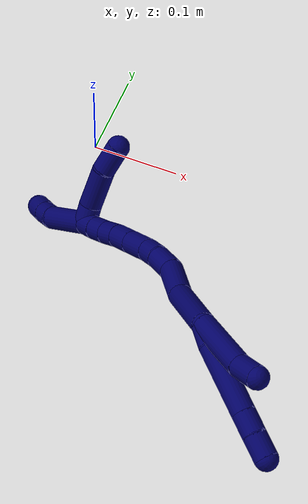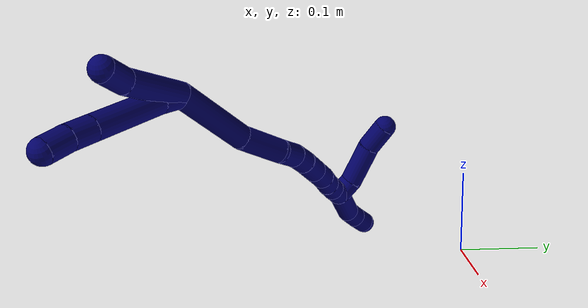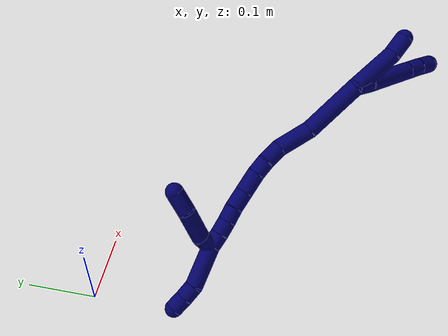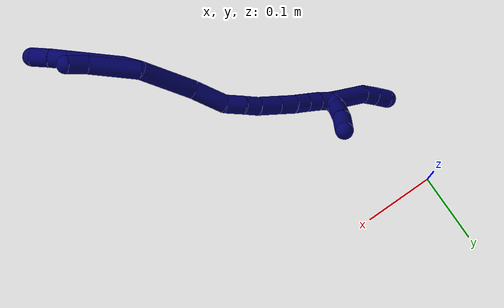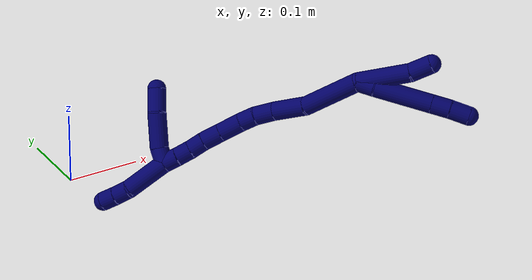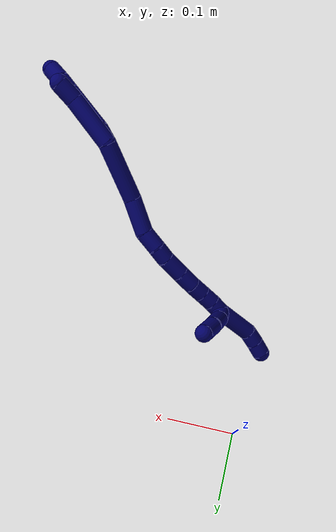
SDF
<sdf version="1.7">
 <world name="default">
  <model name="7">
   <static>0</static>
   <link name="7">
    <collision name="collision-cylinder-e_1_2_8">
     <pose>0.006313 0.009011 0.004244 -1.13065 0.564919 -0.364149</pose>
     <geometry><cylinder><radius>0.0125</radius><length>0.023584</length></cylinder></geometry>
     <surface>
      <friction><ode><mu>1.16</mu><mu2>1.16</mu2><slip1>0</slip1><slip2>0</slip2></ode></friction>
      <contact><ode><kp>1e+06</kp><kd>1</kd><max_vel>0</max_vel><min_depth>0.001</min_depth></ode></contact>
     </surface>
    </collision>
    <visual name="visual-cylinder-e_1_2_8">
     <pose>0.006313 0.009011 0.004244 -1.13065 0.564919 -0.364149</pose>
     <geometry><cylinder><radius>0.0125</radius><length>0.023584</length></cylinder></geometry>
     <material><ambient>0.003922 0 0.403922 1</ambient></material>
    </visual>
    <collision name="collision-cylinder-e_2_8_9">
     <pose>0.028308 0.049894 0.021971 -1.17059 0.425478 -0.284392</pose>
     <geometry><cylinder><radius>0.0125</radius><length>0.075991</length></cylinder></geometry>
     <surface>
      <friction><ode><mu>1.16</mu><mu2>1.16</mu2><slip1>0</slip1><slip2>0</slip2></ode></friction>
      <contact><ode><kp>1e+06</kp><kd>1</kd><max_vel>0</max_vel><min_depth>0.001</min_depth></ode></contact>
     </surface>
    </collision>
    <visual name="visual-cylinder-e_2_8_9">
     <pose>0.028308 0.049894 0.021971 -1.17059 0.425478 -0.284392</pose>
     <geometry><cylinder><radius>0.0125</radius><length>0.075991</length></cylinder></geometry>
     <material><ambient>0.003922 0 0.403922 1</ambient></material>
    </visual>
    <collision name="collision-cylinder-e_3_9_10">
     <pose>0.049031 0.092044 0.039791 -1.17148 0.424347 -0.283892</pose>
     <geometry><cylinder><radius>0.0125</radius><length>0.02448</length></cylinder></geometry>
     <surface>
      <friction><ode><mu>1.16</mu><mu2>1.16</mu2><slip1>0</slip1><slip2>0</slip2></ode></friction>
      <contact><ode><kp>1e+06</kp><kd>1</kd><max_vel>0</max_vel><min_depth>0.001</min_depth></ode></contact>
     </surface>
    </collision>
    <visual name="visual-cylinder-e_3_9_10">
     <pose>0.049031 0.092044 0.039791 -1.17148 0.424347 -0.283892</pose>
     <geometry><cylinder><radius>0.0125</radius><length>0.02448</length></cylinder></geometry>
     <material><ambient>0.003922 0 0.403922 1</ambient></material>
    </visual>
    <collision name="collision-cylinder-e_4_10_6">
     <pose>0.058949 0.113765 0.047805 -1.25983 0.385587 -0.282723</pose>
     <geometry><cylinder><radius>0.0125</radius><length>0.025945</length></cylinder></geometry>
     <surface>
      <friction><ode><mu>1.16</mu><mu2>1.16</mu2><slip1>0</slip1><slip2>0</slip2></ode></friction>
      <contact><ode><kp>1e+06</kp><kd>1</kd><max_vel>0</max_vel><min_depth>0.001</min_depth></ode></contact>
     </surface>
    </collision>
    <visual name="visual-cylinder-e_4_10_6">
     <pose>0.058949 0.113765 0.047805 -1.25983 0.385587 -0.282723</pose>
     <geometry><cylinder><radius>0.0125</radius><length>0.025945</length></cylinder></geometry>
     <material><ambient>0.003922 0 0.403922 1</ambient></material>
    </visual>
    <collision name="collision-cylinder-e_1_2_11">
     <pose>0.012278 0.020242 0.02623 -0.657258 0.354883 -0.122147</pose>
     <geometry><cylinder><radius>0.0125</radius><length>0.070668</length></cylinder></geometry>
     <surface>
      <friction><ode><mu>1.16</mu><mu2>1.16</mu2><slip1>0</slip1><slip2>0</slip2></ode></friction>
      <contact><ode><kp>1e+06</kp><kd>1</kd><max_vel>0</max_vel><min_depth>0.001</min_depth></ode></contact>
     </surface>
    </collision>
    <visual name="visual-cylinder-e_1_2_11">
     <pose>0.012278 0.020242 0.02623 -0.657258 0.354883 -0.122147</pose>
     <geometry><cylinder><radius>0.0125</radius><length>0.070668</length></cylinder></geometry>
     <material><ambient>0.003922 0 0.403922 1</ambient></material>
    </visual>
    <collision name="collision-cylinder-e_2_11_5">
     <pose>0.027658 0.047205 0.06512 -0.488015 0.213161 -0.05326</pose>
     <geometry><cylinder><radius>0.0125</radius><length>0.029332</length></cylinder></geometry>
     <surface>
      <friction><ode><mu>1.16</mu><mu2>1.16</mu2><slip1>0</slip1><slip2>0</slip2></ode></friction>
      <contact><ode><kp>1e+06</kp><kd>1</kd><max_vel>0</max_vel><min_depth>0.001</min_depth></ode></contact>
     </surface>
    </collision>
    <visual name="visual-cylinder-e_2_11_5">
     <pose>0.027658 0.047205 0.06512 -0.488015 0.213161 -0.05326</pose>
     <geometry><cylinder><radius>0.0125</radius><length>0.029332</length></cylinder></geometry>
     <material><ambient>0.003922 0 0.403922 1</ambient></material>
    </visual>
    <collision name="collision-cylinder-e_1_2_12">
     <pose>-0.019044 -0.009837 -0.036591 2.87897 -0.465745 -2.1254</pose>
     <geometry><cylinder><radius>0.0125</radius><length>0.084813</length></cylinder></geometry>
     <surface>
      <friction><ode><mu>1.16</mu><mu2>1.16</mu2><slip1>0</slip1><slip2>0</slip2></ode></friction>
      <contact><ode><kp>1e+06</kp><kd>1</kd><max_vel>0</max_vel><min_depth>0.001</min_depth></ode></contact>
     </surface>
    </collision>
    <visual name="visual-cylinder-e_1_2_12">
     <pose>-0.019044 -0.009837 -0.036591 2.87897 -0.465745 -2.1254</pose>
     <geometry><cylinder><radius>0.0125</radius><length>0.084813</length></cylinder></geometry>
     <material><ambient>0.003922 0 0.403922 1</ambient></material>
    </visual>
    <collision name="collision-cylinder-e_2_12_13">
     <pose>-0.052541 -0.028506 -0.091052 2.68255 -0.627296 -1.89314</pose>
     <geometry><cylinder><radius>0.0125</radius><length>0.049244</length></cylinder></geometry>
     <surface>
      <friction><ode><mu>1.16</mu><mu2>1.16</mu2><slip1>0</slip1><slip2>0</slip2></ode></friction>
      <contact><ode><kp>1e+06</kp><kd>1</kd><max_vel>0</max_vel><min_depth>0.001</min_depth></ode></contact>
     </surface>
    </collision>
    <visual name="visual-cylinder-e_2_12_13">
     <pose>-0.052541 -0.028506 -0.091052 2.68255 -0.627296 -1.89314</pose>
     <geometry><cylinder><radius>0.0125</radius><length>0.049244</length></cylinder></geometry>
     <material><ambient>0.003922 0 0.403922 1</ambient></material>
    </visual>
    <collision name="collision-cylinder-e_3_13_14">
     <pose>-0.071105 -0.044673 -0.119575 2.53866 -0.307868 -0.925702</pose>
     <geometry><cylinder><radius>0.0125</radius><length>0.027142</length></cylinder></geometry>
     <surface>
      <friction><ode><mu>1.16</mu><mu2>1.16</mu2><slip1>0</slip1><slip2>0</slip2></ode></friction>
      <contact><ode><kp>1e+06</kp><kd>1</kd><max_vel>0</max_vel><min_depth>0.001</min_depth></ode></contact>
     </surface>
    </collision>
    <visual name="visual-cylinder-e_3_13_14">
     <pose>-0.071105 -0.044673 -0.119575 2.53866 -0.307868 -0.925702</pose>
     <geometry><cylinder><radius>0.0125</radius><length>0.027142</length></cylinder></geometry>
     <material><ambient>0.003922 0 0.403922 1</ambient></material>
    </visual>
    <collision name="collision-cylinder-e_4_14_15">
     <pose>-0.078093 -0.056239 -0.139616 2.71803 -0.272284 -1.13457</pose>
     <geometry><cylinder><radius>0.0125</radius><length>0.021384</length></cylinder></geometry>
     <surface>
      <friction><ode><mu>1.16</mu><mu2>1.16</mu2><slip1>0</slip1><slip2>0</slip2></ode></friction>
      <contact><ode><kp>1e+06</kp><kd>1</kd><max_vel>0</max_vel><min_depth>0.001</min_depth></ode></contact>
     </surface>
    </collision>
    <visual name="visual-cylinder-e_4_14_15">
     <pose>-0.078093 -0.056239 -0.139616 2.71803 -0.272284 -1.13457</pose>
     <geometry><cylinder><radius>0.0125</radius><length>0.021384</length></cylinder></geometry>
     <material><ambient>0.003922 0 0.403922 1</ambient></material>
    </visual>
    <collision name="collision-cylinder-e_5_15_16">
     <pose>-0.083325 -0.066829 -0.162848 2.71109 -0.153446 -0.676208</pose>
     <geometry><cylinder><radius>0.0125</radius><length>0.030831</length></cylinder></geometry>
     <surface>
      <friction><ode><mu>1.16</mu><mu2>1.16</mu2><slip1>0</slip1><slip2>0</slip2></ode></friction>
      <contact><ode><kp>1e+06</kp><kd>1</kd><max_vel>0</max_vel><min_depth>0.001</min_depth></ode></contact>
     </surface>
    </collision>
    <visual name="visual-cylinder-e_5_15_16">
     <pose>-0.083325 -0.066829 -0.162848 2.71109 -0.153446 -0.676208</pose>
     <geometry><cylinder><radius>0.0125</radius><length>0.030831</length></cylinder></geometry>
     <material><ambient>0.003922 0 0.403922 1</ambient></material>
    </visual>
    <collision name="collision-cylinder-e_6_16_17">
     <pose>-0.08764 -0.078372 -0.188031 2.71269 -0.15588 -0.688597</pose>
     <geometry><cylinder><radius>0.0125</radius><length>0.025241</length></cylinder></geometry>
     <surface>
      <friction><ode><mu>1.16</mu><mu2>1.16</mu2><slip1>0</slip1><slip2>0</slip2></ode></friction>
      <contact><ode><kp>1e+06</kp><kd>1</kd><max_vel>0</max_vel><min_depth>0.001</min_depth></ode></contact>
     </surface>
    </collision>
    <visual name="visual-cylinder-e_6_16_17">
     <pose>-0.08764 -0.078372 -0.188031 2.71269 -0.15588 -0.688597</pose>
     <geometry><cylinder><radius>0.0125</radius><length>0.025241</length></cylinder></geometry>
     <material><ambient>0.003922 0 0.403922 1</ambient></material>
    </visual>
    <collision name="collision-cylinder-e_7_17_18">
     <pose>-0.090452 -0.087249 -0.209148 2.78058 -0.08141 -0.439148</pose>
     <geometry><cylinder><radius>0.0125</radius><length>0.020976</length></cylinder></geometry>
     <surface>
      <friction><ode><mu>1.16</mu><mu2>1.16</mu2><slip1>0</slip1><slip2>0</slip2></ode></friction>
      <contact><ode><kp>1e+06</kp><kd>1</kd><max_vel>0</max_vel><min_depth>0.001</min_depth></ode></contact>
     </surface>
    </collision>
    <visual name="visual-cylinder-e_7_17_18">
     <pose>-0.090452 -0.087249 -0.209148 2.78058 -0.08141 -0.439148</pose>
     <geometry><cylinder><radius>0.0125</radius><length>0.020976</length></cylinder></geometry>
     <material><ambient>0.003922 0 0.403922 1</ambient></material>
    </visual>
    <collision name="collision-cylinder-e_8_18_19">
     <pose>-0.092341 -0.095139 -0.228059 2.71068 -0.102695 -0.461302</pose>
     <geometry><cylinder><radius>0.0125</radius><length>0.020209</length></cylinder></geometry>
     <surface>
      <friction><ode><mu>1.16</mu><mu2>1.16</mu2><slip1>0</slip1><slip2>0</slip2></ode></friction>
      <contact><ode><kp>1e+06</kp><kd>1</kd><max_vel>0</max_vel><min_depth>0.001</min_depth></ode></contact>
     </surface>
    </collision>
    <visual name="visual-cylinder-e_8_18_19">
     <pose>-0.092341 -0.095139 -0.228059 2.71068 -0.102695 -0.461302</pose>
     <geometry><cylinder><radius>0.0125</radius><length>0.020209</length></cylinder></geometry>
     <material><ambient>0.003922 0 0.403922 1</ambient></material>
    </visual>
    <collision name="collision-cylinder-e_9_19_1">
     <pose>-0.095146 -0.103483 -0.246208 2.71062 -0.176417 -0.767968</pose>
     <geometry><cylinder><radius>0.0125</radius><length>0.020161</length></cylinder></geometry>
     <surface>
      <friction><ode><mu>1.16</mu><mu2>1.16</mu2><slip1>0</slip1><slip2>0</slip2></ode></friction>
      <contact><ode><kp>1e+06</kp><kd>1</kd><max_vel>0</max_vel><min_depth>0.001</min_depth></ode></contact>
     </surface>
    </collision>
    <visual name="visual-cylinder-e_9_19_1">
     <pose>-0.095146 -0.103483 -0.246208 2.71062 -0.176417 -0.767968</pose>
     <geometry><cylinder><radius>0.0125</radius><length>0.020161</length></cylinder></geometry>
     <material><ambient>0.003922 0 0.403922 1</ambient></material>
    </visual>
    <collision name="collision-cylinder-e_1_1_20">
     <pose>-0.103446 -0.113956 -0.249725 0.855187 -0.661864 -0.310613</pose>
     <geometry><cylinder><radius>0.0125</radius><length>0.021254</length></cylinder></geometry>
     <surface>
      <friction><ode><mu>1.16</mu><mu2>1.16</mu2><slip1>0</slip1><slip2>0</slip2></ode></friction>
      <contact><ode><kp>1e+06</kp><kd>1</kd><max_vel>0</max_vel><min_depth>0.001</min_depth></ode></contact>
     </surface>
    </collision>
    <visual name="visual-cylinder-e_1_1_20">
     <pose>-0.103446 -0.113956 -0.249725 0.855187 -0.661864 -0.310613</pose>
     <geometry><cylinder><radius>0.0125</radius><length>0.021254</length></cylinder></geometry>
     <material><ambient>0.003922 0 0.403922 1</ambient></material>
    </visual>
    <collision name="collision-cylinder-e_2_20_21">
     <pose>-0.120004 -0.132379 -0.226546 0.600062 -0.437767 -0.13742</pose>
     <geometry><cylinder><radius>0.0125</radius><length>0.047304</length></cylinder></geometry>
     <surface>
      <friction><ode><mu>1.16</mu><mu2>1.16</mu2><slip1>0</slip1><slip2>0</slip2></ode></friction>
      <contact><ode><kp>1e+06</kp><kd>1</kd><max_vel>0</max_vel><min_depth>0.001</min_depth></ode></contact>
     </surface>
    </collision>
    <visual name="visual-cylinder-e_2_20_21">
     <pose>-0.120004 -0.132379 -0.226546 0.600062 -0.437767 -0.13742</pose>
     <geometry><cylinder><radius>0.0125</radius><length>0.047304</length></cylinder></geometry>
     <material><ambient>0.003922 0 0.403922 1</ambient></material>
    </visual>
    <collision name="collision-cylinder-e_3_21_4">
     <pose>-0.139408 -0.150204 -0.197623 0.471212 -0.639084 -0.158533</pose>
     <geometry><cylinder><radius>0.0125</radius><length>0.031442</length></cylinder></geometry>
     <surface>
      <friction><ode><mu>1.16</mu><mu2>1.16</mu2><slip1>0</slip1><slip2>0</slip2></ode></friction>
      <contact><ode><kp>1e+06</kp><kd>1</kd><max_vel>0</max_vel><min_depth>0.001</min_depth></ode></contact>
     </surface>
    </collision>
    <visual name="visual-cylinder-e_3_21_4">
     <pose>-0.139408 -0.150204 -0.197623 0.471212 -0.639084 -0.158533</pose>
     <geometry><cylinder><radius>0.0125</radius><length>0.031442</length></cylinder></geometry>
     <material><ambient>0.003922 0 0.403922 1</ambient></material>
    </visual>
    <collision name="collision-cylinder-e_1_1_22">
     <pose>-0.097154 -0.117151 -0.282881 2.81002 -0.008169 -0.048813</pose>
     <geometry><cylinder><radius>0.0125</radius><length>0.058499</length></cylinder></geometry>
     <surface>
      <friction><ode><mu>1.16</mu><mu2>1.16</mu2><slip1>0</slip1><slip2>0</slip2></ode></friction>
      <contact><ode><kp>1e+06</kp><kd>1</kd><max_vel>0</max_vel><min_depth>0.001</min_depth></ode></contact>
     </surface>
    </collision>
    <visual name="visual-cylinder-e_1_1_22">
     <pose>-0.097154 -0.117151 -0.282881 2.81002 -0.008169 -0.048813</pose>
     <geometry><cylinder><radius>0.0125</radius><length>0.058499</length></cylinder></geometry>
     <material><ambient>0.003922 0 0.403922 1</ambient></material>
    </visual>
    <collision name="collision-cylinder-e_2_22_23">
     <pose>-0.100585 -0.129934 -0.319753 2.80146 -0.315554 -1.49452</pose>
     <geometry><cylinder><radius>0.0125</radius><length>0.02057</length></cylinder></geometry>
     <surface>
      <friction><ode><mu>1.16</mu><mu2>1.16</mu2><slip1>0</slip1><slip2>0</slip2></ode></friction>
      <contact><ode><kp>1e+06</kp><kd>1</kd><max_vel>0</max_vel><min_depth>0.001</min_depth></ode></contact>
     </surface>
    </collision>
    <visual name="visual-cylinder-e_2_22_23">
     <pose>-0.100585 -0.129934 -0.319753 2.80146 -0.315554 -1.49452</pose>
     <geometry><cylinder><radius>0.0125</radius><length>0.02057</length></cylinder></geometry>
     <material><ambient>0.003922 0 0.403922 1</ambient></material>
    </visual>
    <collision name="collision-cylinder-e_3_23_3">
     <pose>-0.107586 -0.136601 -0.338104 2.78472 -0.372515 -1.61465</pose>
     <geometry><cylinder><radius>0.0125</radius><length>0.02093</length></cylinder></geometry>
     <surface>
      <friction><ode><mu>1.16</mu><mu2>1.16</mu2><slip1>0</slip1><slip2>0</slip2></ode></friction>
      <contact><ode><kp>1e+06</kp><kd>1</kd><max_vel>0</max_vel><min_depth>0.001</min_depth></ode></contact>
     </surface>
    </collision>
    <visual name="visual-cylinder-e_3_23_3">
     <pose>-0.107586 -0.136601 -0.338104 2.78472 -0.372515 -1.61465</pose>
     <geometry><cylinder><radius>0.0125</radius><length>0.02093</length></cylinder></geometry>
     <material><ambient>0.003922 0 0.403922 1</ambient></material>
    </visual>
    <collision name="collision-sphere-3">
     <pose>-0.111395 -0.140006 -0.347237 0 -0 0</pose>
     <geometry><sphere><radius>0.0125</radius></sphere></geometry>
     <surface>
      <friction><ode><mu>1.16</mu><mu2>1.16</mu2><slip1>0</slip1><slip2>0</slip2></ode></friction>
      <contact><ode><kp>1e+06</kp><kd>1</kd><max_vel>0</max_vel><min_depth>0.001</min_depth></ode></contact>
     </surface>
    </collision>
    <visual name="visual-sphere-3">
     <pose>-0.111395 -0.140006 -0.347237 0 -0 0</pose>
     <geometry><sphere><radius>0.0125</radius></sphere></geometry>
     <material><ambient>0.003922 0 0.403922 1</ambient></material>
    </visual>
    <collision name="collision-sphere-23">
     <pose>-0.103777 -0.133195 -0.328971 0 -0 0</pose>
     <geometry><sphere><radius>0.0125</radius></sphere></geometry>
     <surface>
      <friction><ode><mu>1.16</mu><mu2>1.16</mu2><slip1>0</slip1><slip2>0</slip2></ode></friction>
      <contact><ode><kp>1e+06</kp><kd>1</kd><max_vel>0</max_vel><min_depth>0.001</min_depth></ode></contact>
     </surface>
    </collision>
    <visual name="visual-sphere-23">
     <pose>-0.103777 -0.133195 -0.328971 0 -0 0</pose>
     <geometry><sphere><radius>0.0125</radius></sphere></geometry>
     <material><ambient>0.003922 0 0.403922 1</ambient></material>
    </visual>
    <collision name="collision-sphere-22">
     <pose>-0.097393 -0.126672 -0.310536 0 -0 0</pose>
     <geometry><sphere><radius>0.0125</radius></sphere></geometry>
     <surface>
      <friction><ode><mu>1.16</mu><mu2>1.16</mu2><slip1>0</slip1><slip2>0</slip2></ode></friction>
      <contact><ode><kp>1e+06</kp><kd>1</kd><max_vel>0</max_vel><min_depth>0.001</min_depth></ode></contact>
     </surface>
    </collision>
    <visual name="visual-sphere-22">
     <pose>-0.097393 -0.126672 -0.310536 0 -0 0</pose>
     <geometry><sphere><radius>0.0125</radius></sphere></geometry>
     <material><ambient>0.003922 0 0.403922 1</ambient></material>
    </visual>
    <collision name="collision-sphere-4">
     <pose>-0.148784 -0.155933 -0.18638 0 -0 0</pose>
     <geometry><sphere><radius>0.0125</radius></sphere></geometry>
     <surface>
      <friction><ode><mu>1.16</mu><mu2>1.16</mu2><slip1>0</slip1><slip2>0</slip2></ode></friction>
      <contact><ode><kp>1e+06</kp><kd>1</kd><max_vel>0</max_vel><min_depth>0.001</min_depth></ode></contact>
     </surface>
    </collision>
    <visual name="visual-sphere-4">
     <pose>-0.148784 -0.155933 -0.18638 0 -0 0</pose>
     <geometry><sphere><radius>0.0125</radius></sphere></geometry>
     <material><ambient>0.003922 0 0.403922 1</ambient></material>
    </visual>
    <collision name="collision-sphere-21">
     <pose>-0.130031 -0.144476 -0.208866 0 -0 0</pose>
     <geometry><sphere><radius>0.0125</radius></sphere></geometry>
     <surface>
      <friction><ode><mu>1.16</mu><mu2>1.16</mu2><slip1>0</slip1><slip2>0</slip2></ode></friction>
      <contact><ode><kp>1e+06</kp><kd>1</kd><max_vel>0</max_vel><min_depth>0.001</min_depth></ode></contact>
     </surface>
    </collision>
    <visual name="visual-sphere-21">
     <pose>-0.130031 -0.144476 -0.208866 0 -0 0</pose>
     <geometry><sphere><radius>0.0125</radius></sphere></geometry>
     <material><ambient>0.003922 0 0.403922 1</ambient></material>
    </visual>
    <collision name="collision-sphere-20">
     <pose>-0.109978 -0.120283 -0.244225 0 -0 0</pose>
     <geometry><sphere><radius>0.0125</radius></sphere></geometry>
     <surface>
      <friction><ode><mu>1.16</mu><mu2>1.16</mu2><slip1>0</slip1><slip2>0</slip2></ode></friction>
      <contact><ode><kp>1e+06</kp><kd>1</kd><max_vel>0</max_vel><min_depth>0.001</min_depth></ode></contact>
     </surface>
    </collision>
    <visual name="visual-sphere-20">
     <pose>-0.109978 -0.120283 -0.244225 0 -0 0</pose>
     <geometry><sphere><radius>0.0125</radius></sphere></geometry>
     <material><ambient>0.003922 0 0.403922 1</ambient></material>
    </visual>
    <collision name="collision-sphere-11">
     <pose>0.024556 0.040484 0.05246 0 -0 0</pose>
     <geometry><sphere><radius>0.0125</radius></sphere></geometry>
     <surface>
      <friction><ode><mu>1.16</mu><mu2>1.16</mu2><slip1>0</slip1><slip2>0</slip2></ode></friction>
      <contact><ode><kp>1e+06</kp><kd>1</kd><max_vel>0</max_vel><min_depth>0.001</min_depth></ode></contact>
     </surface>
    </collision>
    <visual name="visual-sphere-11">
     <pose>0.024556 0.040484 0.05246 0 -0 0</pose>
     <geometry><sphere><radius>0.0125</radius></sphere></geometry>
     <material><ambient>0.003922 0 0.403922 1</ambient></material>
    </visual>
    <collision name="collision-sphere-6">
     <pose>0.063828 0.125208 0.051483 0 -0 0</pose>
     <geometry><sphere><radius>0.0125</radius></sphere></geometry>
     <surface>
      <friction><ode><mu>1.16</mu><mu2>1.16</mu2><slip1>0</slip1><slip2>0</slip2></ode></friction>
      <contact><ode><kp>1e+06</kp><kd>1</kd><max_vel>0</max_vel><min_depth>0.001</min_depth></ode></contact>
     </surface>
    </collision>
    <visual name="visual-sphere-6">
     <pose>0.063828 0.125208 0.051483 0 -0 0</pose>
     <geometry><sphere><radius>0.0125</radius></sphere></geometry>
     <material><ambient>0.003922 0 0.403922 1</ambient></material>
    </visual>
    <collision name="collision-sphere-10">
     <pose>0.05407 0.102321 0.044128 0 -0 0</pose>
     <geometry><sphere><radius>0.0125</radius></sphere></geometry>
     <surface>
      <friction><ode><mu>1.16</mu><mu2>1.16</mu2><slip1>0</slip1><slip2>0</slip2></ode></friction>
      <contact><ode><kp>1e+06</kp><kd>1</kd><max_vel>0</max_vel><min_depth>0.001</min_depth></ode></contact>
     </surface>
    </collision>
    <visual name="visual-sphere-10">
     <pose>0.05407 0.102321 0.044128 0 -0 0</pose>
     <geometry><sphere><radius>0.0125</radius></sphere></geometry>
     <material><ambient>0.003922 0 0.403922 1</ambient></material>
    </visual>
    <collision name="collision-sphere-9">
     <pose>0.043991 0.081768 0.035454 0 -0 0</pose>
     <geometry><sphere><radius>0.0125</radius></sphere></geometry>
     <surface>
      <friction><ode><mu>1.16</mu><mu2>1.16</mu2><slip1>0</slip1><slip2>0</slip2></ode></friction>
      <contact><ode><kp>1e+06</kp><kd>1</kd><max_vel>0</max_vel><min_depth>0.001</min_depth></ode></contact>
     </surface>
    </collision>
    <visual name="visual-sphere-9">
     <pose>0.043991 0.081768 0.035454 0 -0 0</pose>
     <geometry><sphere><radius>0.0125</radius></sphere></geometry>
     <material><ambient>0.003922 0 0.403922 1</ambient></material>
    </visual>
    <collision name="collision-sphere-2">
     <geometry><sphere><radius>0.0125</radius></sphere></geometry>
     <surface>
      <friction><ode><mu>1.16</mu><mu2>1.16</mu2><slip1>0</slip1><slip2>0</slip2></ode></friction>
      <contact><ode><kp>1e+06</kp><kd>1</kd><max_vel>0</max_vel><min_depth>0.001</min_depth></ode></contact>
     </surface>
    </collision>
    <visual name="visual-sphere-2">
     <geometry><sphere><radius>0.0125</radius></sphere></geometry>
     <material><ambient>0.003922 0 0.403922 1</ambient></material>
    </visual>
    <collision name="collision-sphere-19">
     <pose>-0.093377 -0.099338 -0.237191 0 -0 0</pose>
     <geometry><sphere><radius>0.0125</radius></sphere></geometry>
     <surface>
      <friction><ode><mu>1.16</mu><mu2>1.16</mu2><slip1>0</slip1><slip2>0</slip2></ode></friction>
      <contact><ode><kp>1e+06</kp><kd>1</kd><max_vel>0</max_vel><min_depth>0.001</min_depth></ode></contact>
     </surface>
    </collision>
    <visual name="visual-sphere-19">
     <pose>-0.093377 -0.099338 -0.237191 0 -0 0</pose>
     <geometry><sphere><radius>0.0125</radius></sphere></geometry>
     <material><ambient>0.003922 0 0.403922 1</ambient></material>
    </visual>
    <collision name="collision-sphere-8">
     <pose>0.012626 0.018021 0.008487 0 -0 0</pose>
     <geometry><sphere><radius>0.0125</radius></sphere></geometry>
     <surface>
      <friction><ode><mu>1.16</mu><mu2>1.16</mu2><slip1>0</slip1><slip2>0</slip2></ode></friction>
      <contact><ode><kp>1e+06</kp><kd>1</kd><max_vel>0</max_vel><min_depth>0.001</min_depth></ode></contact>
     </surface>
    </collision>
    <visual name="visual-sphere-8">
     <pose>0.012626 0.018021 0.008487 0 -0 0</pose>
     <geometry><sphere><radius>0.0125</radius></sphere></geometry>
     <material><ambient>0.003922 0 0.403922 1</ambient></material>
    </visual>
    <collision name="collision-sphere-5">
     <pose>0.030761 0.053926 0.077781 0 -0 0</pose>
     <geometry><sphere><radius>0.0125</radius></sphere></geometry>
     <surface>
      <friction><ode><mu>1.16</mu><mu2>1.16</mu2><slip1>0</slip1><slip2>0</slip2></ode></friction>
      <contact><ode><kp>1e+06</kp><kd>1</kd><max_vel>0</max_vel><min_depth>0.001</min_depth></ode></contact>
     </surface>
    </collision>
    <visual name="visual-sphere-5">
     <pose>0.030761 0.053926 0.077781 0 -0 0</pose>
     <geometry><sphere><radius>0.0125</radius></sphere></geometry>
     <material><ambient>0.003922 0 0.403922 1</ambient></material>
    </visual>
    <collision name="collision-sphere-12">
     <pose>-0.038089 -0.019674 -0.073181 0 -0 0</pose>
     <geometry><sphere><radius>0.0125</radius></sphere></geometry>
     <surface>
      <friction><ode><mu>1.16</mu><mu2>1.16</mu2><slip1>0</slip1><slip2>0</slip2></ode></friction>
      <contact><ode><kp>1e+06</kp><kd>1</kd><max_vel>0</max_vel><min_depth>0.001</min_depth></ode></contact>
     </surface>
    </collision>
    <visual name="visual-sphere-12">
     <pose>-0.038089 -0.019674 -0.073181 0 -0 0</pose>
     <geometry><sphere><radius>0.0125</radius></sphere></geometry>
     <material><ambient>0.003922 0 0.403922 1</ambient></material>
    </visual>
    <collision name="collision-sphere-13">
     <pose>-0.066993 -0.037339 -0.108923 0 -0 0</pose>
     <geometry><sphere><radius>0.0125</radius></sphere></geometry>
     <surface>
      <friction><ode><mu>1.16</mu><mu2>1.16</mu2><slip1>0</slip1><slip2>0</slip2></ode></friction>
      <contact><ode><kp>1e+06</kp><kd>1</kd><max_vel>0</max_vel><min_depth>0.001</min_depth></ode></contact>
     </surface>
    </collision>
    <visual name="visual-sphere-13">
     <pose>-0.066993 -0.037339 -0.108923 0 -0 0</pose>
     <geometry><sphere><radius>0.0125</radius></sphere></geometry>
     <material><ambient>0.003922 0 0.403922 1</ambient></material>
    </visual>
    <collision name="collision-sphere-14">
     <pose>-0.075217 -0.052006 -0.130227 0 -0 0</pose>
     <geometry><sphere><radius>0.0125</radius></sphere></geometry>
     <surface>
      <friction><ode><mu>1.16</mu><mu2>1.16</mu2><slip1>0</slip1><slip2>0</slip2></ode></friction>
      <contact><ode><kp>1e+06</kp><kd>1</kd><max_vel>0</max_vel><min_depth>0.001</min_depth></ode></contact>
     </surface>
    </collision>
    <visual name="visual-sphere-14">
     <pose>-0.075217 -0.052006 -0.130227 0 -0 0</pose>
     <geometry><sphere><radius>0.0125</radius></sphere></geometry>
     <material><ambient>0.003922 0 0.403922 1</ambient></material>
    </visual>
    <collision name="collision-sphere-15">
     <pose>-0.080968 -0.060472 -0.149004 0 -0 0</pose>
     <geometry><sphere><radius>0.0125</radius></sphere></geometry>
     <surface>
      <friction><ode><mu>1.16</mu><mu2>1.16</mu2><slip1>0</slip1><slip2>0</slip2></ode></friction>
      <contact><ode><kp>1e+06</kp><kd>1</kd><max_vel>0</max_vel><min_depth>0.001</min_depth></ode></contact>
     </surface>
    </collision>
    <visual name="visual-sphere-15">
     <pose>-0.080968 -0.060472 -0.149004 0 -0 0</pose>
     <geometry><sphere><radius>0.0125</radius></sphere></geometry>
     <material><ambient>0.003922 0 0.403922 1</ambient></material>
    </visual>
    <collision name="collision-sphere-16">
     <pose>-0.085681 -0.073187 -0.176692 0 -0 0</pose>
     <geometry><sphere><radius>0.0125</radius></sphere></geometry>
     <surface>
      <friction><ode><mu>1.16</mu><mu2>1.16</mu2><slip1>0</slip1><slip2>0</slip2></ode></friction>
      <contact><ode><kp>1e+06</kp><kd>1</kd><max_vel>0</max_vel><min_depth>0.001</min_depth></ode></contact>
     </surface>
    </collision>
    <visual name="visual-sphere-16">
     <pose>-0.085681 -0.073187 -0.176692 0 -0 0</pose>
     <geometry><sphere><radius>0.0125</radius></sphere></geometry>
     <material><ambient>0.003922 0 0.403922 1</ambient></material>
    </visual>
    <collision name="collision-sphere-17">
     <pose>-0.089599 -0.083556 -0.199369 0 -0 0</pose>
     <geometry><sphere><radius>0.0125</radius></sphere></geometry>
     <surface>
      <friction><ode><mu>1.16</mu><mu2>1.16</mu2><slip1>0</slip1><slip2>0</slip2></ode></friction>
      <contact><ode><kp>1e+06</kp><kd>1</kd><max_vel>0</max_vel><min_depth>0.001</min_depth></ode></contact>
     </surface>
    </collision>
    <visual name="visual-sphere-17">
     <pose>-0.089599 -0.083556 -0.199369 0 -0 0</pose>
     <geometry><sphere><radius>0.0125</radius></sphere></geometry>
     <material><ambient>0.003922 0 0.403922 1</ambient></material>
    </visual>
    <collision name="collision-sphere-18">
     <pose>-0.091305 -0.090941 -0.218927 0 -0 0</pose>
     <geometry><sphere><radius>0.0125</radius></sphere></geometry>
     <surface>
      <friction><ode><mu>1.16</mu><mu2>1.16</mu2><slip1>0</slip1><slip2>0</slip2></ode></friction>
      <contact><ode><kp>1e+06</kp><kd>1</kd><max_vel>0</max_vel><min_depth>0.001</min_depth></ode></contact>
     </surface>
    </collision>
    <visual name="visual-sphere-18">
     <pose>-0.091305 -0.090941 -0.218927 0 -0 0</pose>
     <geometry><sphere><radius>0.0125</radius></sphere></geometry>
     <material><ambient>0.003922 0 0.403922 1</ambient></material>
    </visual>
    <collision name="collision-sphere-1">
     <pose>-0.096915 -0.107629 -0.255225 0 -0 0</pose>
     <geometry><sphere><radius>0.0125</radius></sphere></geometry>
     <surface>
      <friction><ode><mu>1.16</mu><mu2>1.16</mu2><slip1>0</slip1><slip2>0</slip2></ode></friction>
      <contact><ode><kp>1e+06</kp><kd>1</kd><max_vel>0</max_vel><min_depth>0.001</min_depth></ode></contact>
     </surface>
    </collision>
    <visual name="visual-sphere-1">
     <pose>-0.096915 -0.107629 -0.255225 0 -0 0</pose>
     <geometry><sphere><radius>0.0125</radius></sphere></geometry>
     <material><ambient>0.003922 0 0.403922 1</ambient></material>
    </visual>
    <inertial>
     <pose>-0.045092 -0.037732 -0.109649 0 -0 0</pose>
     <mass>0.75</mass>
     <inertia><ixx>1e-06</ixx><ixy>0</ixy><ixz>0</ixz><iyy>-5e-06</iyy><iyz>0</iyz><izz>-2e-05</izz></inertia>
    </inertial>
   </link>
   <pose>0.255891 -0.321018 0.236124 -0.631556 -0.027643 -1.87983</pose>
  </model>
 </world>
</sdf>
